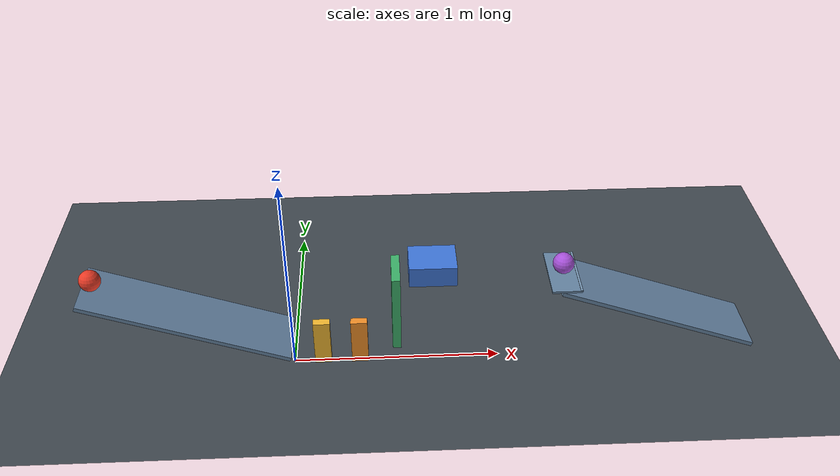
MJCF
<mujoco model="gravity_domino_flap_chain">
  <compiler angle="degree" autolimits="true" inertiafromgeom="true"/>
  <option timestep="0.002" gravity="0 0 -9.81" integrator="implicitfast" solver="Newton" iterations="80" tolerance="1e-10"/>
  <size njmax="1000" nconmax="300"/>

  <!-- MuJoCo has no direct restitution attribute. The contact damping ratio below approximates restitution 0.05. -->
  <!-- Sliding friction is 0.70 throughout. Modest rolling resistance on the floor helps the balls settle. -->

  <visual>
    <headlight ambient="0.35 0.35 0.35" diffuse="0.75 0.75 0.75" specular="0.2 0.2 0.2"/>
  </visual>

  <worldbody>
    <light name="overhead_light" pos="0.6 -2 4" dir="0 0 -1"/>
    <camera name="overview" pos="1.0 -4.8 2.6" xyaxes="1 0 0 0 0.45 0.893"/>

    <geom name="floor" type="plane" pos="0 0 0" size="5 3 0.1" friction="0.70 0.005 0.006" condim="6" solref="0.008 0.6901" solimp="0.95 0.99 0.001" rgba="0.25 0.28 0.31 1"/>

    <!-- Each ramp has a 1.00 m by 0.30 m inclined surface, at 20 degrees. -->
    <!-- Ramp1's low surface endpoint is (0, 0, 0.15). -->
    <body name="ramp1" pos="-0.473266512 0 0.311613146">
      <geom name="ramp1_surface" type="box" size="0.50 0.15 0.01" quat="0.984807753 0 0.173648178 0" friction="0.70 0.005 0.001" condim="6" solref="0.008 0.6901" solimp="0.95 0.99 0.001" rgba="0.40 0.52 0.64 1"/>
    </body>

    <!-- Ball1 starts tangent to the ramp, 3 cm inward from its high endpoint. -->
    <body name="ball1" pos="-0.894400835 0 0.528744547">
      <freejoint name="ball1_free"/>
      <geom name="ball1_sphere" type="sphere" size="0.05" mass="0.20" friction="0.70 0.005 0.001" condim="6" solref="0.008 0.6901" solimp="0.95 0.99 0.001" rgba="0.92 0.23 0.15 1"/>
    </body>

    <!-- Domino1's upstream face is 0.10 m beyond ramp1's low endpoint. -->
    <!-- The domino centers are separated by 0.18 m along x. -->
    <body name="domino1" pos="0.14 0 0.12">
      <freejoint name="domino1_free"/>
      <geom name="domino1_block" type="box" size="0.04 0.02 0.12" mass="0.25" friction="0.70 0.005 0.001" condim="6" solref="0.008 0.6901" solimp="0.95 0.99 0.001" rgba="0.96 0.73 0.19 1"/>
    </body>

    <body name="domino2" pos="0.32 0 0.12">
      <freejoint name="domino2_free"/>
      <geom name="domino2_block" type="box" size="0.04 0.02 0.12" mass="0.25" friction="0.70 0.005 0.001" condim="6" solref="0.008 0.6901" solimp="0.95 0.99 0.001" rgba="0.96 0.57 0.16 1"/>
    </body>

    <!-- The initially upright flap is exactly balanced about its bottom hinge. -->
    <!-- Its centerline is 0.18 m beyond domino2; domino2 strikes its lower half. -->
    <!-- Positive hinge rotation tips the flap clockwise toward +x in the x-z view. -->
    <body name="flap1" pos="0.50 0 0.15">
      <joint name="flap1_hinge" type="hinge" axis="0 1 0" limited="true" range="0 65" damping="0.04" solreflimit="0.004 1" solimplimit="0.99 0.999 0.0001"/>
      <geom name="flap1_panel" type="box" pos="0 0 0.20" size="0.02 0.10 0.20" mass="0.30" friction="0.70 0.005 0.001" condim="6" solref="0.008 0.6901" solimp="0.95 0.99 0.001" rgba="0.24 0.70 0.42 1"/>
    </body>

    <!-- The horizontal prismatic joint supports the cart without floor drag. -->
    <!-- The cart initially clears the flap, and its front face reaches ball2 after 0.45 m of travel. -->
    <body name="cart1" pos="0.67 0 0.556">
      <joint name="cart1_slide" type="slide" axis="1 0 0" limited="true" range="0 0.80" damping="0.20" solreflimit="0.004 1" solimplimit="0.99 0.999 0.0001"/>
      <geom name="cart1_box" type="box" size="0.11 0.09 0.05" mass="0.50" friction="0.70 0.005 0.001" condim="6" solref="0.008 0.6901" solimp="0.95 0.99 0.001" rgba="0.25 0.47 0.86 1"/>
    </body>

    <!-- Ramp2's low surface endpoint is at z=0.15. -->
    <!-- A short level starting shelf and 1.5 mm lip hold ball2 until the cart pushes it out. -->
    <!-- All fixed ramp2 geometry belongs to this one body. -->
    <body name="ramp2" pos="1.729324488 0 0.311613146">
      <geom name="ramp2_surface" type="box" size="0.50 0.15 0.01" quat="0.984807753 0 0.173648178 0" friction="0.70 0.005 0.001" condim="6" solref="0.008 0.6901" solimp="0.95 0.99 0.001" rgba="0.40 0.52 0.64 1"/>
      <geom name="ramp2_start_shelf" type="box" pos="-0.449324488 0 0.183386854" size="0.07 0.15 0.005" friction="0.70 0.005 0.001" condim="6" solref="0.008 0.6901" solimp="0.95 0.99 0.001" rgba="0.40 0.52 0.64 1"/>
      <geom name="ramp2_release_lip" type="box" pos="-0.384324488 0 0.189136854" size="0.005 0.15 0.00075" friction="0.70 0.005 0.001" condim="6" solref="0.008 0.6901" solimp="0.95 0.99 0.001" rgba="0.47 0.59 0.71 1"/>
    </body>

    <body name="ball2" pos="1.28 0 0.55">
      <freejoint name="ball2_free"/>
      <geom name="ball2_sphere" type="sphere" size="0.05" mass="0.20" friction="0.70 0.005 0.001" condim="6" solref="0.008 0.6901" solimp="0.95 0.99 0.001" rgba="0.66 0.32 0.86 1"/>
    </body>
  </worldbody>

  <!-- Omitted qpos uses the authored poses; omitted qvel initializes every body at rest. -->
  <keyframe>
    <key name="start"/>
  </keyframe>
</mujoco>
